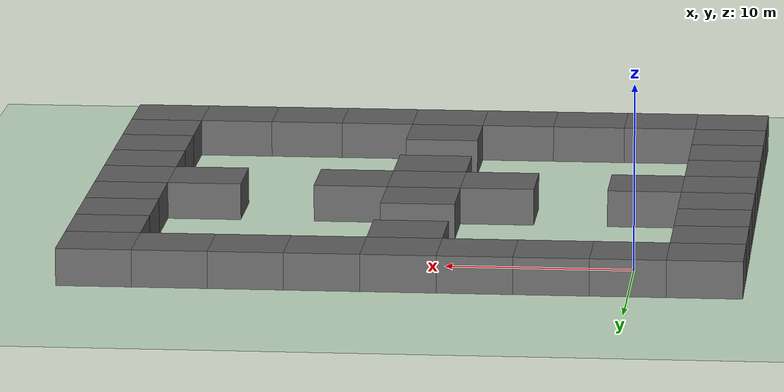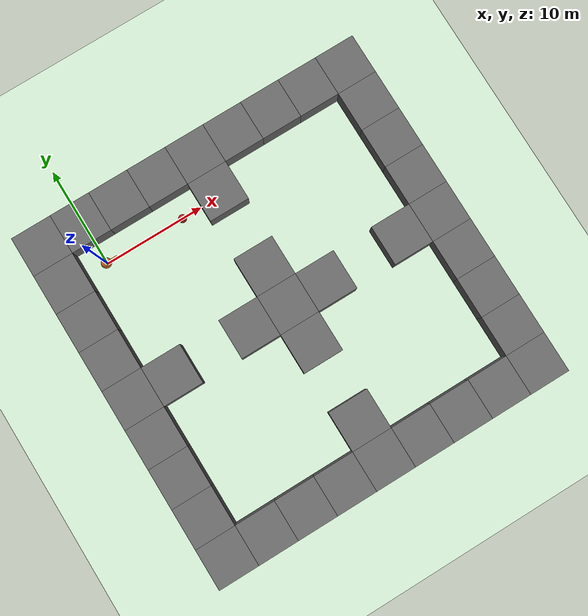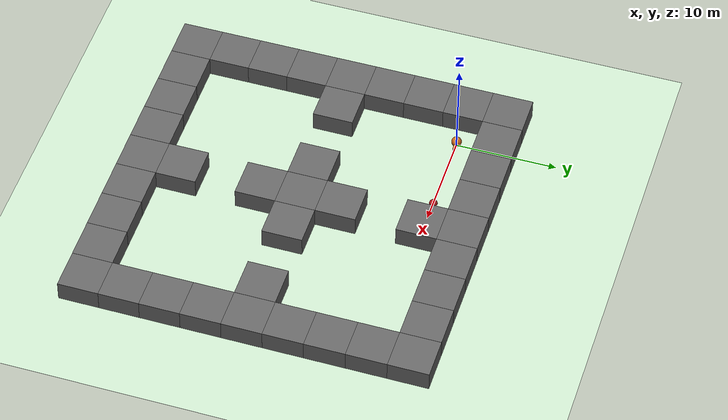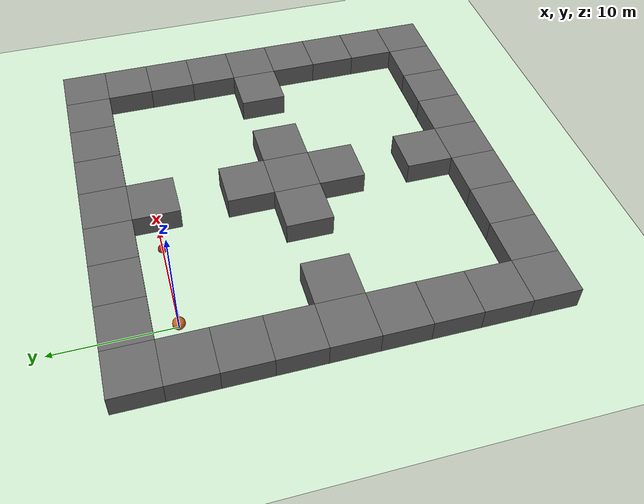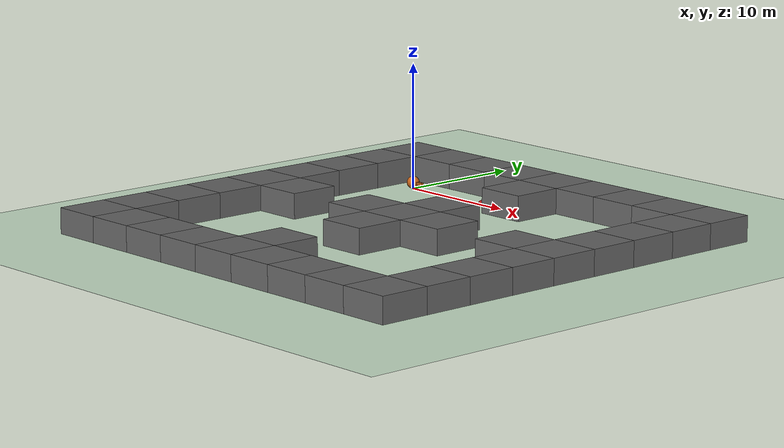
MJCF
<mujoco>
    <compiler angle="degree" coordinate="local" inertiafromgeom="true" />
    <option integrator="RK4" timestep="0.02" />
    <default>
        <joint armature="0" damping="0" limited="false" />
        <geom conaffinity="0" condim="3" density="100" friction="1.0 0.5 0.5" margin="0" rgba="0.8 0.6 0.4 1" />
    </default>
    <asset>
        <texture builtin="gradient" height="100" rgb1="1 1 1" rgb2="0 0 0" type="skybox" width="100" />
        <texture builtin="flat" height="1278" mark="cross" markrgb="1 1 1" name="texgeom" random="0.01" rgb1="0.8 0.6 0.4" rgb2="0.8 0.6 0.4" type="cube" width="127" />
        <texture builtin="checker" height="100" name="texplane" rgb1="0.2 0.3 0.4" rgb2="0.1 0.2 0.3" type="2d" width="100" />
        <material name="MatPlane" reflectance="0.5" shininess="1" specular="1" texrepeat="30 30" texture="texplane" />
        <material name="geom" texture="texgeom" texuniform="true" />
    </asset>
    <worldbody>
        <light cutoff="100" diffuse="1 1 1" dir="-0 0 -1.3" directional="true" exponent="1" pos="0 0 1.3" specular=".1 .1 .1" />
        <geom conaffinity="1" condim="3" material="MatPlane" name="floor" pos="0 0 0" rgba="0.8 0.9 0.8 1" size="40 40 40" type="plane" />

        <body name="torso" pos="0 0 0">
            <geom name="pointbody" pos="0 0 0.5" rgba="0.8 0.4 0.1 1" size="0.5" solimp="0.9 0.99 0.001" type="sphere" />
            <geom name="pointarrow" pos="0.6 0 0.5" rgba="0.8 0.4 0.1 1" size="0.5 0.1 0.1" solimp="0.9 0.99 0.001" type="box" />
            <joint axis="1 0 0" name="ballx" pos="0 0 0" type="slide" />
            <joint axis="0 1 0" name="bally" pos="0 0 0" type="slide" />
            <joint axis="0 0 1" limited="false" name="rot" pos="0 0 0" type="hinge" />
        </body>
    <geom conaffinity="1" contype="1" material="" name="block_0_0" pos="-4.0 -28.0 1.0" rgba="0.4 0.4 0.4 1" size="2.0 2.0 1.0" type="box" /><geom conaffinity="1" contype="1" material="" name="block_0_1" pos="0.0 -28.0 1.0" rgba="0.4 0.4 0.4 1" size="2.0 2.0 1.0" type="box" /><geom conaffinity="1" contype="1" material="" name="block_0_2" pos="4.0 -28.0 1.0" rgba="0.4 0.4 0.4 1" size="2.0 2.0 1.0" type="box" /><geom conaffinity="1" contype="1" material="" name="block_0_3" pos="8.0 -28.0 1.0" rgba="0.4 0.4 0.4 1" size="2.0 2.0 1.0" type="box" /><geom conaffinity="1" contype="1" material="" name="block_0_4" pos="12.0 -28.0 1.0" rgba="0.4 0.4 0.4 1" size="2.0 2.0 1.0" type="box" /><geom conaffinity="1" contype="1" material="" name="block_0_5" pos="16.0 -28.0 1.0" rgba="0.4 0.4 0.4 1" size="2.0 2.0 1.0" type="box" /><geom conaffinity="1" contype="1" material="" name="block_0_6" pos="20.0 -28.0 1.0" rgba="0.4 0.4 0.4 1" size="2.0 2.0 1.0" type="box" /><geom conaffinity="1" contype="1" material="" name="block_0_7" pos="24.0 -28.0 1.0" rgba="0.4 0.4 0.4 1" size="2.0 2.0 1.0" type="box" /><geom conaffinity="1" contype="1" material="" name="block_0_8" pos="28.0 -28.0 1.0" rgba="0.4 0.4 0.4 1" size="2.0 2.0 1.0" type="box" /><geom conaffinity="1" contype="1" material="" name="block_1_0" pos="-4.0 -24.0 1.0" rgba="0.4 0.4 0.4 1" size="2.0 2.0 1.0" type="box" /><geom conaffinity="1" contype="1" material="" name="block_1_4" pos="12.0 -24.0 1.0" rgba="0.4 0.4 0.4 1" size="2.0 2.0 1.0" type="box" /><geom conaffinity="1" contype="1" material="" name="block_1_8" pos="28.0 -24.0 1.0" rgba="0.4 0.4 0.4 1" size="2.0 2.0 1.0" type="box" /><geom conaffinity="1" contype="1" material="" name="block_2_0" pos="-4.0 -20.0 1.0" rgba="0.4 0.4 0.4 1" size="2.0 2.0 1.0" type="box" /><geom conaffinity="1" contype="1" material="" name="block_2_8" pos="28.0 -20.0 1.0" rgba="0.4 0.4 0.4 1" size="2.0 2.0 1.0" type="box" /><geom conaffinity="1" contype="1" material="" name="block_3_0" pos="-4.0 -16.0 1.0" rgba="0.4 0.4 0.4 1" size="2.0 2.0 1.0" type="box" /><geom conaffinity="1" contype="1" material="" name="block_3_4" pos="12.0 -16.0 1.0" rgba="0.4 0.4 0.4 1" size="2.0 2.0 1.0" type="box" /><geom conaffinity="1" contype="1" material="" name="block_3_8" pos="28.0 -16.0 1.0" rgba="0.4 0.4 0.4 1" size="2.0 2.0 1.0" type="box" /><geom conaffinity="1" contype="1" material="" name="block_4_0" pos="-4.0 -12.0 1.0" rgba="0.4 0.4 0.4 1" size="2.0 2.0 1.0" type="box" /><geom conaffinity="1" contype="1" material="" name="block_4_1" pos="0.0 -12.0 1.0" rgba="0.4 0.4 0.4 1" size="2.0 2.0 1.0" type="box" /><geom conaffinity="1" contype="1" material="" name="block_4_3" pos="8.0 -12.0 1.0" rgba="0.4 0.4 0.4 1" size="2.0 2.0 1.0" type="box" /><geom conaffinity="1" contype="1" material="" name="block_4_4" pos="12.0 -12.0 1.0" rgba="0.4 0.4 0.4 1" size="2.0 2.0 1.0" type="box" /><geom conaffinity="1" contype="1" material="" name="block_4_5" pos="16.0 -12.0 1.0" rgba="0.4 0.4 0.4 1" size="2.0 2.0 1.0" type="box" /><geom conaffinity="1" contype="1" material="" name="block_4_7" pos="24.0 -12.0 1.0" rgba="0.4 0.4 0.4 1" size="2.0 2.0 1.0" type="box" /><geom conaffinity="1" contype="1" material="" name="block_4_8" pos="28.0 -12.0 1.0" rgba="0.4 0.4 0.4 1" size="2.0 2.0 1.0" type="box" /><geom conaffinity="1" contype="1" material="" name="block_5_0" pos="-4.0 -8.0 1.0" rgba="0.4 0.4 0.4 1" size="2.0 2.0 1.0" type="box" /><geom conaffinity="1" contype="1" material="" name="block_5_4" pos="12.0 -8.0 1.0" rgba="0.4 0.4 0.4 1" size="2.0 2.0 1.0" type="box" /><geom conaffinity="1" contype="1" material="" name="block_5_8" pos="28.0 -8.0 1.0" rgba="0.4 0.4 0.4 1" size="2.0 2.0 1.0" type="box" /><geom conaffinity="1" contype="1" material="" name="block_6_0" pos="-4.0 -4.0 1.0" rgba="0.4 0.4 0.4 1" size="2.0 2.0 1.0" type="box" /><geom conaffinity="1" contype="1" material="" name="block_6_8" pos="28.0 -4.0 1.0" rgba="0.4 0.4 0.4 1" size="2.0 2.0 1.0" type="box" /><geom conaffinity="1" contype="1" material="" name="block_7_0" pos="-4.0 0.0 1.0" rgba="0.4 0.4 0.4 1" size="2.0 2.0 1.0" type="box" /><geom conaffinity="1" contype="1" material="" name="block_7_4" pos="12.0 0.0 1.0" rgba="0.4 0.4 0.4 1" size="2.0 2.0 1.0" type="box" /><geom conaffinity="1" contype="1" material="" name="block_7_8" pos="28.0 0.0 1.0" rgba="0.4 0.4 0.4 1" size="2.0 2.0 1.0" type="box" /><geom conaffinity="1" contype="1" material="" name="block_8_0" pos="-4.0 4.0 1.0" rgba="0.4 0.4 0.4 1" size="2.0 2.0 1.0" type="box" /><geom conaffinity="1" contype="1" material="" name="block_8_1" pos="0.0 4.0 1.0" rgba="0.4 0.4 0.4 1" size="2.0 2.0 1.0" type="box" /><geom conaffinity="1" contype="1" material="" name="block_8_2" pos="4.0 4.0 1.0" rgba="0.4 0.4 0.4 1" size="2.0 2.0 1.0" type="box" /><geom conaffinity="1" contype="1" material="" name="block_8_3" pos="8.0 4.0 1.0" rgba="0.4 0.4 0.4 1" size="2.0 2.0 1.0" type="box" /><geom conaffinity="1" contype="1" material="" name="block_8_4" pos="12.0 4.0 1.0" rgba="0.4 0.4 0.4 1" size="2.0 2.0 1.0" type="box" /><geom conaffinity="1" contype="1" material="" name="block_8_5" pos="16.0 4.0 1.0" rgba="0.4 0.4 0.4 1" size="2.0 2.0 1.0" type="box" /><geom conaffinity="1" contype="1" material="" name="block_8_6" pos="20.0 4.0 1.0" rgba="0.4 0.4 0.4 1" size="2.0 2.0 1.0" type="box" /><geom conaffinity="1" contype="1" material="" name="block_8_7" pos="24.0 4.0 1.0" rgba="0.4 0.4 0.4 1" size="2.0 2.0 1.0" type="box" /><geom conaffinity="1" contype="1" material="" name="block_8_8" pos="28.0 4.0 1.0" rgba="0.4 0.4 0.4 1" size="2.0 2.0 1.0" type="box" /><site name="goal_site0" pos="8.0 0.0 0.0" rgba="0.7 0.1 0.1 1" size="0.4" /></worldbody>
    <actuator>

        <motor ctrllimited="true" ctrlrange="-1.0 1.0" joint="ballx" />
        <motor ctrllimited="true" ctrlrange="-1.0 1.0" joint="rot" />
    </actuator>
</mujoco>
